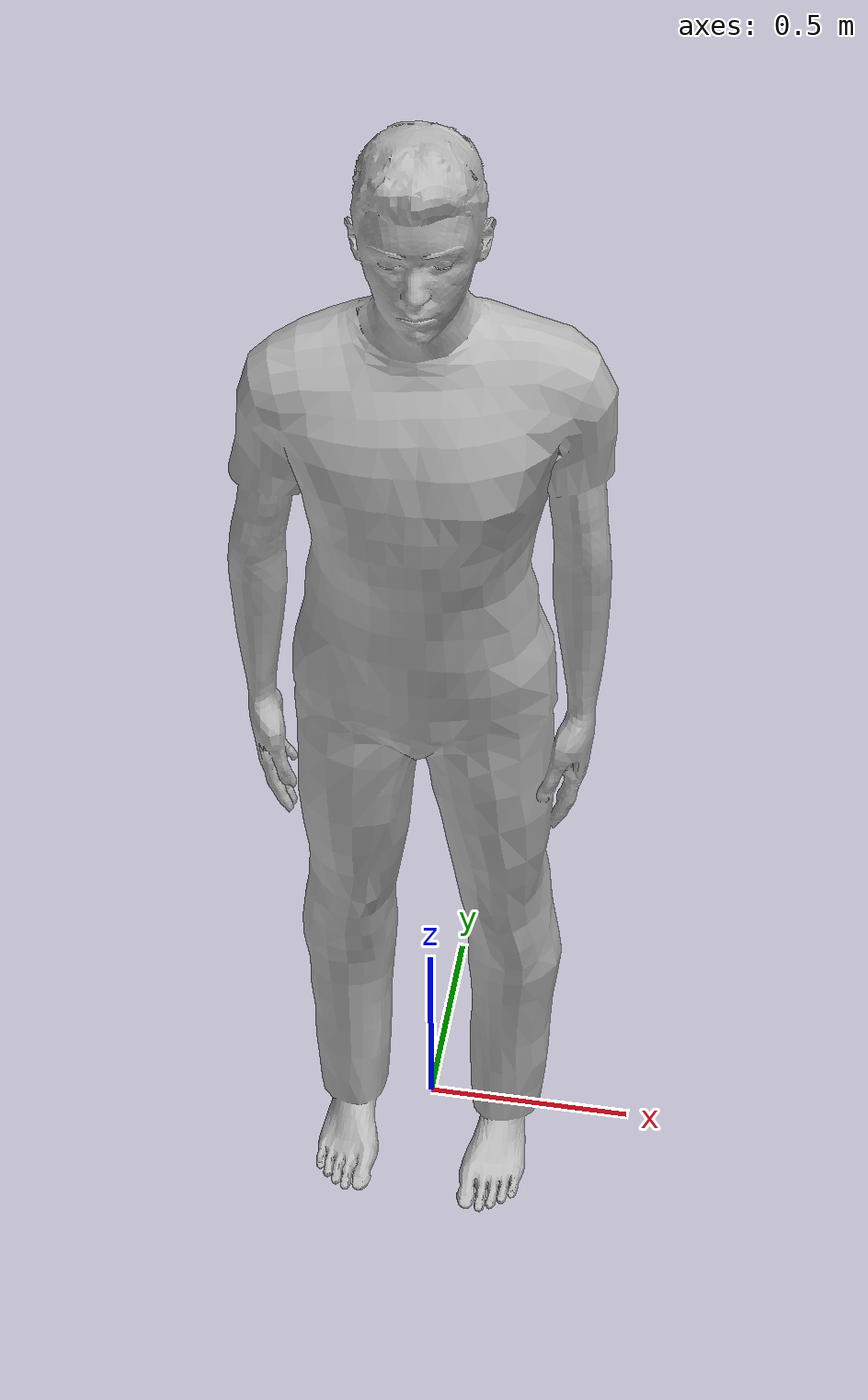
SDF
<?xml version="1.0"?>
<sdf version="1.10">
  <model name="person_standing">
    <!-- Set to true if you want it fixed in place -->
    <static>false</static>

    <link name="body_link">
      <pose>0 0 0 0 0 0</pose>

      <collision name="collision">
        <geometry>
          <mesh>
            <uri>model://person_standing/meshes/standing.dae</uri>
            <scale>1.5 1.5 1.5</scale>
          </mesh>
        </geometry>
        <surface>
          <contact><ode/></contact>
          <bounce/>
          <friction>
            <torsional><ode/></torsional>
            <ode/>
          </friction>
        </surface>
      </collision>

      <visual name="visual">
        <geometry>
          <mesh>
            <uri>model://person_standing/meshes/standing.dae</uri>
            <scale>1.5 1.5 1.5</scale>
          </mesh>
        </geometry>
      </visual>
    </link>
  </model>
</sdf>
